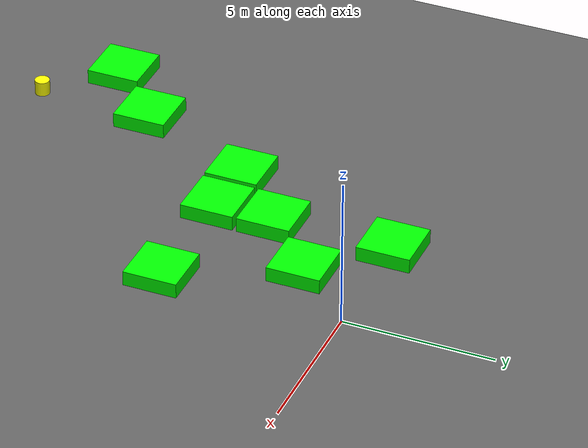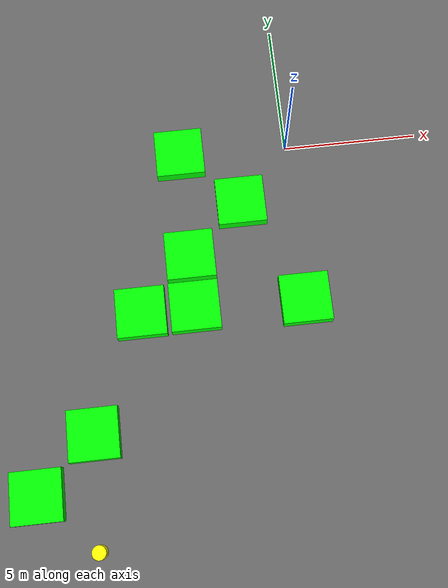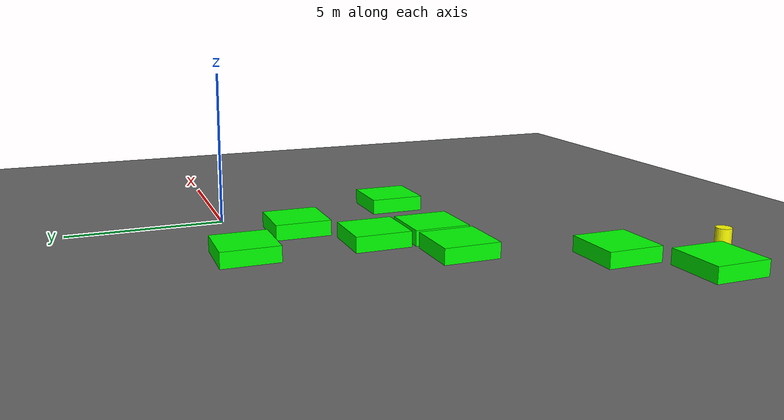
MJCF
<mujoco model="randommix_004_lvl0_standard_obs8_d3long_seed1057">
    <compiler angle="degree" coordinate="local" inertiafromgeom="true"/>
    <option integrator="RK4" timestep="0.01"/>

    <asset>
        <texture builtin="gradient" height="100" rgb1="0.6 0.8 1" rgb2="0 0 0" type="skybox" width="100"/>
        <texture name="floor_texture" type="2d" builtin="checker" width="100" height="100" rgb1="0 0 0" rgb2="0.8 0.8 0.8"/>
        <material name="MatPlane" reflectance="0.5" shininess="1" specular="1" texrepeat="10 10" texture="floor_texture"/>
    </asset>

    <!-- Excluding the contact between the agent and the goal, and the agent and the floor -->
    <contact>
        <exclude body1="agent" body2="goal"/>
        <exclude body1 = "agent" body2 = "floor"/>
    </contact>

    <extension>
        <plugin plugin = "mujoco.pid">
            <instance name = "pid1">
                <config key="kp" value="2"/>
                <config key="ki" value="0"/>
                <config key="kd" value="55"/>
            </instance>
        </plugin>
    </extension>

    <worldbody>
        <light cutoff="100" diffuse="1 1 1" dir="-0 0 -1.3" directional="true" exponent="1" pos="0 0 1.3" specular=".1 .1 .1"/>
        <body name="floor" pos="0 0 0">
            <geom name="floor_geom" type="plane" size="20 20 0.1" material="MatPlane"/>
        </body>

                <body name="goal" pos="0.0000 0.0000 0">
            <geom name="goal_geom" type="plane" size="0.5 0.5 1" pos="0 0 0" rgba="1 0 0 1"/>
        </body>

                <body name="agent" pos="-8.0000 -14.0000 0.250">
            <joint name="j1" type="slide" axis ="1 0 0 "/>
            <joint name="j2" type="slide" axis ="0 1 0 "/>
            <geom name="agent_geom" type="cylinder" size="0.25 0.25 0.250" rgba="1 1 0 1"/>
        </body>

        <body name="obstacle1" pos="-4.0528 0.0798 0.250">  <geom name="obstacle1_geom" type="box" size="0.9000 0.9000 0.250" rgba="0 1 0 1"/></body>
        <body name="obstacle2" pos="-1.9424 -2.0661 0.250">  <geom name="obstacle2_geom" type="box" size="0.9000 0.9000 0.250" rgba="0 1 0 1"/></body>
        <body name="obstacle3" pos="-4.0254 -3.9698 0.250">  <geom name="obstacle3_geom" type="box" size="0.9000 0.9000 0.250" rgba="0 1 0 1"/></body>
        <body name="obstacle4" pos="-5.9888 -5.9270 0.250">  <geom name="obstacle4_geom" type="box" size="0.9000 0.9000 0.250" rgba="0 1 0 1"/></body>
        <body name="obstacle5" pos="-4.0305 -5.9060 0.250">  <geom name="obstacle5_geom" type="box" size="0.9000 0.9000 0.250" rgba="0 1 0 1"/></body>
        <body name="obstacle6" pos="-0.0057 -6.0369 0.250">  <geom name="obstacle6_geom" type="box" size="0.9000 0.9000 0.250" rgba="0 1 0 1"/></body>
        <body name="obstacle7" pos="-7.9640 -10.0712 0.250">  <geom name="obstacle7_geom" type="box" size="0.9000 0.9000 0.250" rgba="0 1 0 1"/></body>
        <body name="obstacle8" pos="-10.0193 -11.9605 0.250">  <geom name="obstacle8_geom" type="box" size="0.9000 0.9000 0.250" rgba="0 1 0 1"/></body>

    </worldbody>

    <sensor>
<!-- SENSORS -->

        <distance name="dist1" geom1="agent_geom" geom2="obstacle1_geom" cutoff="1.5"/>
        <distance name="dist2" geom1="agent_geom" geom2="obstacle2_geom" cutoff="1.5"/>
        <distance name="dist3" geom1="agent_geom" geom2="obstacle3_geom" cutoff="1.5"/>
        <distance name="dist4" geom1="agent_geom" geom2="obstacle4_geom" cutoff="1.5"/>
        <distance name="dist5" geom1="agent_geom" geom2="obstacle5_geom" cutoff="1.5"/>
        <distance name="dist6" geom1="agent_geom" geom2="obstacle6_geom" cutoff="1.5"/>
        <distance name="dist7" geom1="agent_geom" geom2="obstacle7_geom" cutoff="1.5"/>
        <distance name="dist8" geom1="agent_geom" geom2="obstacle8_geom" cutoff="1.5"/>
</sensor>

    <actuator>
        <plugin joint="j1" plugin="mujoco.pid" instance="pid1" />
        <plugin joint="j2" plugin="mujoco.pid" instance="pid1"/>
    </actuator>
</mujoco>
